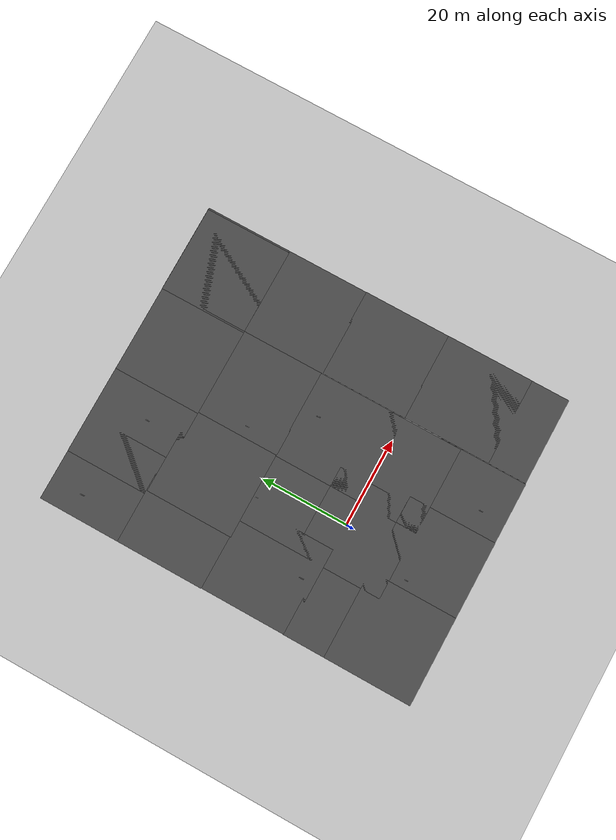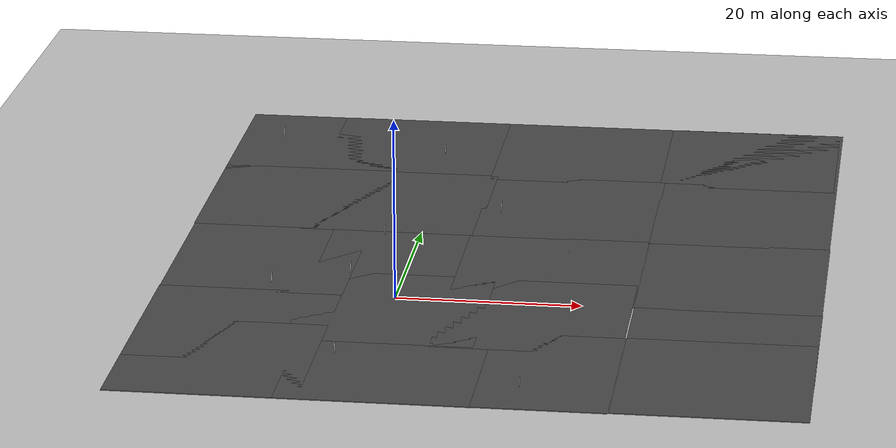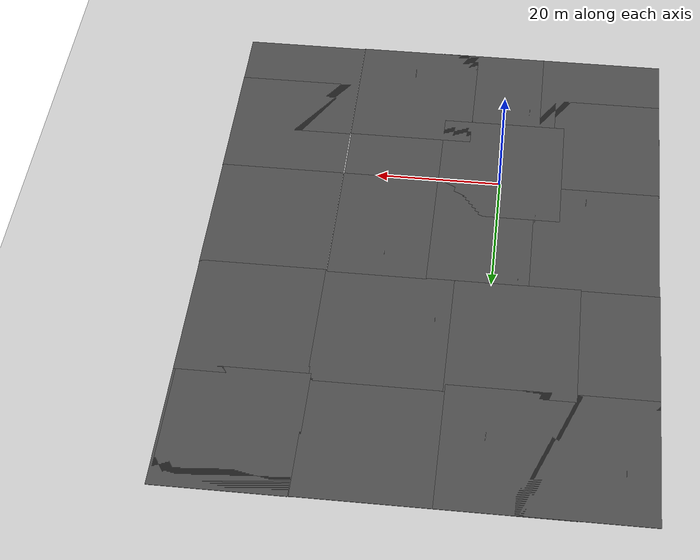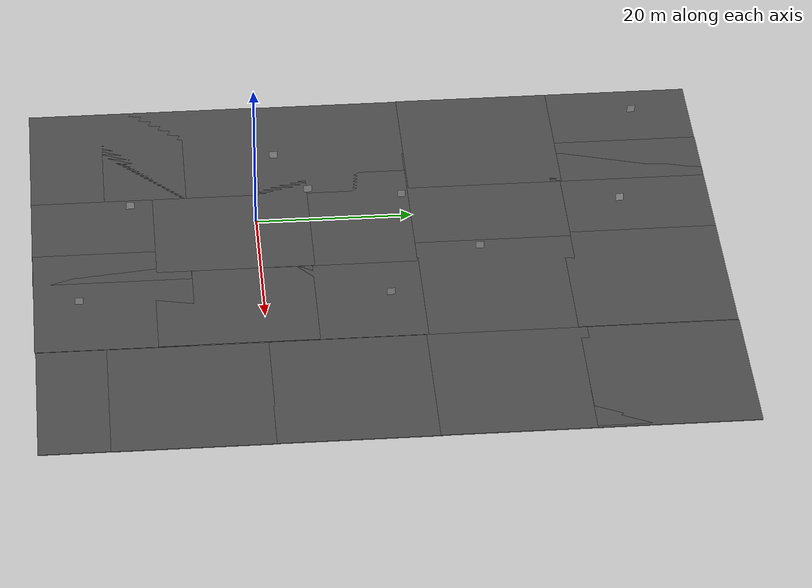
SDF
<sdf version="1.7">
 <world name="default">
  <plugin name="ros_interface_plugin" filename="librotors_gazebo_ros_interface_plugin.so"/>
  <light name="sun" type="directional">
   <pose>0 0 10 0 -0 0</pose>
   <diffuse>0.8 0.8 0.8 1</diffuse>
   <specular>0.2 0.2 0.2 1</specular>
   <attenuation>
    <range>1000</range>
    <constant>0.9</constant>
    <linear>0.01</linear>
    <quadratic>0.001</quadratic>
   </attenuation>
   <direction>-0.5 0.1 -0.9</direction>
   <spot><inner_angle>0</inner_angle><outer_angle>0</outer_angle><falloff>0</falloff></spot>
  </light>
  <model name="ground_plane">
   <static>1</static>
   <link name="link">
    <collision name="collision">
     <geometry><plane><normal>0 0 1</normal><size>100 100</size></plane></geometry>
     <surface><friction><ode><mu>100</mu><mu2>50</mu2></ode></friction></surface>
    </collision>
    <visual name="visual">
     <cast_shadows>0</cast_shadows>
     <geometry><plane><normal>0 0 1</normal><size>100 100</size></plane></geometry>
     <material>
      <script><uri>file://media/materials/scripts/gazebo.material</uri><name>Gazebo/Grey</name></script>
     </material>
    </visual>
    <velocity_decay><linear>0</linear><angular>0</angular></velocity_decay>
   </link>
  </model>
  <physics type="ode">
   <max_step_size>0.001</max_step_size>
   <real_time_factor>1</real_time_factor>
   <real_time_update_rate>1000</real_time_update_rate>
  </physics>
  <scene><ambient>0.4 0.4 0.4 1</ambient><background>0.7 0.7 0.7 1</background><shadows>1</shadows></scene>
  <spherical_coordinates>
   <surface_model>EARTH_WGS84</surface_model>
   <latitude_deg>0</latitude_deg>
   <longitude_deg>0</longitude_deg>
   <elevation>0</elevation>
   <heading_deg>0</heading_deg>
  </spherical_coordinates>
  <model name="asphalt_plane">
   <static>1</static>
   <link name="link">
    <collision name="collision"><geometry><box><size>20 20 0.1</size></box></geometry></collision>
    <visual name="visual">
     <cast_shadows>0</cast_shadows>
     <geometry><box><size>20 20 0.1</size></box></geometry>
     <material>
      <script>
       <uri>model://asphalt_plane/materials/scripts</uri>
       <uri>model://asphalt_plane/materials/textures</uri>
       <name>vrc/asphalt</name>
      </script>
     </material>
    </visual>
    <velocity_decay><linear>0</linear><angular>0</angular></velocity_decay>
   </link>
   <pose>0.030437 -3.13546 0 0 -0 0</pose>
  </model>
  <model name="asphalt_plane_0">
   <static>1</static>
   <link name="link">
    <collision name="collision"><geometry><box><size>20 20 0.1</size></box></geometry></collision>
    <visual name="visual">
     <cast_shadows>0</cast_shadows>
     <geometry><box><size>20 20 0.1</size></box></geometry>
     <material>
      <script>
       <uri>model://asphalt_plane/materials/scripts</uri>
       <uri>model://asphalt_plane/materials/textures</uri>
       <name>vrc/asphalt</name>
      </script>
     </material>
    </visual>
    <velocity_decay><linear>0</linear><angular>0</angular></velocity_decay>
   </link>
   <pose>0.092637 9.86851 0 0 -0 0</pose>
  </model>
  <model name="asphalt_plane_1">
   <static>1</static>
   <link name="link">
    <collision name="collision"><geometry><box><size>20 20 0.1</size></box></geometry></collision>
    <visual name="visual">
     <cast_shadows>0</cast_shadows>
     <geometry><box><size>20 20 0.1</size></box></geometry>
     <material>
      <script>
       <uri>model://asphalt_plane/materials/scripts</uri>
       <uri>model://asphalt_plane/materials/textures</uri>
       <name>vrc/asphalt</name>
      </script>
     </material>
    </visual>
    <velocity_decay><linear>0</linear><angular>0</angular></velocity_decay>
   </link>
   <pose>15.4977 10 0 0 -0 0</pose>
  </model>
  <model name="asphalt_plane_2">
   <static>1</static>
   <link name="link">
    <collision name="collision"><geometry><box><size>20 20 0.1</size></box></geometry></collision>
    <visual name="visual">
     <cast_shadows>0</cast_shadows>
     <geometry><box><size>20 20 0.1</size></box></geometry>
     <material>
      <script>
       <uri>model://asphalt_plane/materials/scripts</uri>
       <uri>model://asphalt_plane/materials/textures</uri>
       <name>vrc/asphalt</name>
      </script>
     </material>
    </visual>
    <velocity_decay><linear>0</linear><angular>0</angular></velocity_decay>
   </link>
   <pose>1.64254 -18.7562 0 0 -0 0</pose>
  </model>
  <model name="asphalt_plane_3">
   <static>1</static>
   <link name="link">
    <collision name="collision"><geometry><box><size>20 20 0.1</size></box></geometry></collision>
    <visual name="visual">
     <cast_shadows>0</cast_shadows>
     <geometry><box><size>20 20 0.1</size></box></geometry>
     <material>
      <script>
       <uri>model://asphalt_plane/materials/scripts</uri>
       <uri>model://asphalt_plane/materials/textures</uri>
       <name>vrc/asphalt</name>
      </script>
     </material>
    </visual>
    <velocity_decay><linear>0</linear><angular>0</angular></velocity_decay>
   </link>
   <pose>15.5136 -18.7124 0 0 -0 0</pose>
  </model>
  <model name="asphalt_plane_4">
   <static>1</static>
   <link name="link">
    <collision name="collision"><geometry><box><size>20 20 0.1</size></box></geometry></collision>
    <visual name="visual">
     <cast_shadows>0</cast_shadows>
     <geometry><box><size>20 20 0.1</size></box></geometry>
     <material>
      <script>
       <uri>model://asphalt_plane/materials/scripts</uri>
       <uri>model://asphalt_plane/materials/textures</uri>
       <name>vrc/asphalt</name>
      </script>
     </material>
    </visual>
    <velocity_decay><linear>0</linear><angular>0</angular></velocity_decay>
   </link>
   <pose>15.4321 -3.44172 0 0 -0 0</pose>
  </model>
  <gravity>0 0 -9.8</gravity>
  <magnetic_field>6e-06 2.3e-05 -4.2e-05</magnetic_field>
  <atmosphere type="adiabatic"/>
  <model name="asphalt_plane_0_clone">
   <static>1</static>
   <link name="link">
    <collision name="collision"><geometry><box><size>20 20 0.1</size></box></geometry></collision>
    <visual name="visual">
     <cast_shadows>0</cast_shadows>
     <geometry><box><size>20 20 0.1</size></box></geometry>
     <material>
      <script>
       <uri>model://asphalt_plane/materials/scripts</uri>
       <uri>model://asphalt_plane/materials/textures</uri>
       <name>vrc/asphalt</name>
      </script>
     </material>
    </visual>
    <velocity_decay><linear>0</linear><angular>0</angular></velocity_decay>
   </link>
   <pose>-15.781 10.0321 0 0 -0 0</pose>
  </model>
  <model name="asphalt_plane_0_clone_clone">
   <static>1</static>
   <link name="link">
    <collision name="collision"><geometry><box><size>20 20 0.1</size></box></geometry></collision>
    <visual name="visual">
     <cast_shadows>0</cast_shadows>
     <geometry><box><size>20 20 0.1</size></box></geometry>
     <material>
      <script>
       <uri>model://asphalt_plane/materials/scripts</uri>
       <uri>model://asphalt_plane/materials/textures</uri>
       <name>vrc/asphalt</name>
      </script>
     </material>
    </visual>
    <velocity_decay><linear>0</linear><angular>0</angular></velocity_decay>
   </link>
   <pose>-15.835 -9.31186 0 0 -0 0</pose>
  </model>
  <model name="asphalt_plane_0_clone_clone_clone">
   <static>1</static>
   <link name="link">
    <collision name="collision"><geometry><box><size>20 20 0.1</size></box></geometry></collision>
    <visual name="visual">
     <cast_shadows>0</cast_shadows>
     <geometry><box><size>20 20 0.1</size></box></geometry>
     <material>
      <script>
       <uri>model://asphalt_plane/materials/scripts</uri>
       <uri>model://asphalt_plane/materials/textures</uri>
       <name>vrc/asphalt</name>
      </script>
     </material>
    </visual>
    <velocity_decay><linear>0</linear><angular>0</angular></velocity_decay>
   </link>
   <pose>-15.841 -18.7551 0 0 -0 0</pose>
  </model>
  <model name="asphalt_plane_1_clone">
   <static>1</static>
   <link name="link">
    <collision name="collision"><geometry><box><size>20 20 0.1</size></box></geometry></collision>
    <visual name="visual">
     <cast_shadows>0</cast_shadows>
     <geometry><box><size>20 20 0.1</size></box></geometry>
     <material>
      <script>
       <uri>model://asphalt_plane/materials/scripts</uri>
       <uri>model://asphalt_plane/materials/textures</uri>
       <name>vrc/asphalt</name>
      </script>
     </material>
    </visual>
    <velocity_decay><linear>0</linear><angular>0</angular></velocity_decay>
   </link>
   <pose>35.5662 9.99458 0 0 -0 0</pose>
  </model>
  <model name="asphalt_plane_4_clone">
   <static>1</static>
   <link name="link">
    <collision name="collision"><geometry><box><size>20 20 0.1</size></box></geometry></collision>
    <visual name="visual">
     <cast_shadows>0</cast_shadows>
     <geometry><box><size>20 20 0.1</size></box></geometry>
     <material>
      <script>
       <uri>model://asphalt_plane/materials/scripts</uri>
       <uri>model://asphalt_plane/materials/textures</uri>
       <name>vrc/asphalt</name>
      </script>
     </material>
    </visual>
    <velocity_decay><linear>0</linear><angular>0</angular></velocity_decay>
   </link>
   <pose>35.602 -9.85933 0 0 -0 0</pose>
  </model>
  <model name="asphalt_plane_3_clone">
   <static>1</static>
   <link name="link">
    <collision name="collision"><geometry><box><size>20 20 0.1</size></box></geometry></collision>
    <visual name="visual">
     <cast_shadows>0</cast_shadows>
     <geometry><box><size>20 20 0.1</size></box></geometry>
     <material>
      <script>
       <uri>model://asphalt_plane/materials/scripts</uri>
       <uri>model://asphalt_plane/materials/textures</uri>
       <name>vrc/asphalt</name>
      </script>
     </material>
    </visual>
    <velocity_decay><linear>0</linear><angular>0</angular></velocity_decay>
   </link>
   <pose>35.5757 -18.5877 0 0 -0 0</pose>
  </model>
  <model name="asphalt_plane_1_clone_clone">
   <static>1</static>
   <link name="link">
    <collision name="collision"><geometry><box><size>20 20 0.1</size></box></geometry></collision>
    <visual name="visual">
     <cast_shadows>0</cast_shadows>
     <geometry><box><size>20 20 0.1</size></box></geometry>
     <material>
      <script>
       <uri>model://asphalt_plane/materials/scripts</uri>
       <uri>model://asphalt_plane/materials/textures</uri>
       <name>vrc/asphalt</name>
      </script>
     </material>
    </visual>
    <velocity_decay><linear>0</linear><angular>0</angular></velocity_decay>
   </link>
   <pose>35.5159 29.6744 0 0 -0 0</pose>
  </model>
  <model name="asphalt_plane_1_clone_clone_clone">
   <static>1</static>
   <link name="link">
    <collision name="collision"><geometry><box><size>20 20 0.1</size></box></geometry></collision>
    <visual name="visual">
     <cast_shadows>0</cast_shadows>
     <geometry><box><size>20 20 0.1</size></box></geometry>
     <material>
      <script>
       <uri>model://asphalt_plane/materials/scripts</uri>
       <uri>model://asphalt_plane/materials/textures</uri>
       <name>vrc/asphalt</name>
      </script>
     </material>
    </visual>
    <velocity_decay><linear>0</linear><angular>0</angular></velocity_decay>
   </link>
   <pose>15.6888 29.7849 0 0 -0 0</pose>
  </model>
  <model name="asphalt_plane_1_clone_clone_clone_clone">
   <static>1</static>
   <link name="link">
    <collision name="collision"><geometry><box><size>20 20 0.1</size></box></geometry></collision>
    <visual name="visual">
     <cast_shadows>0</cast_shadows>
     <geometry><box><size>20 20 0.1</size></box></geometry>
     <material>
      <script>
       <uri>model://asphalt_plane/materials/scripts</uri>
       <uri>model://asphalt_plane/materials/textures</uri>
       <name>vrc/asphalt</name>
      </script>
     </material>
    </visual>
    <velocity_decay><linear>0</linear><angular>0</angular></velocity_decay>
   </link>
   <pose>-3.79661 29.8348 0 0 -0 0</pose>
  </model>
  <model name="asphalt_plane_1_clone_clone_clone_clone_clone">
   <static>1</static>
   <link name="link">
    <collision name="collision"><geometry><box><size>20 20 0.1</size></box></geometry></collision>
    <visual name="visual">
     <cast_shadows>0</cast_shadows>
     <geometry><box><size>20 20 0.1</size></box></geometry>
     <material>
      <script>
       <uri>model://asphalt_plane/materials/scripts</uri>
       <uri>model://asphalt_plane/materials/textures</uri>
       <name>vrc/asphalt</name>
      </script>
     </material>
    </visual>
    <velocity_decay><linear>0</linear><angular>0</angular></velocity_decay>
   </link>
   <pose>-15.8734 30.0233 0 0 -0 0</pose>
  </model>
  <model name="asphalt_plane_1_clone_clone_clone_0">
   <static>1</static>
   <link name="link">
    <collision name="collision"><geometry><box><size>20 20 0.1</size></box></geometry></collision>
    <visual name="visual">
     <cast_shadows>0</cast_shadows>
     <geometry><box><size>20 20 0.1</size></box></geometry>
     <material>
      <script>
       <uri>model://asphalt_plane/materials/scripts</uri>
       <uri>model://asphalt_plane/materials/textures</uri>
       <name>vrc/asphalt</name>
      </script>
     </material>
    </visual>
    <velocity_decay><linear>0</linear><angular>0</angular></velocity_decay>
   </link>
   <pose>35.1617 48.6361 0 0 -0 0</pose>
  </model>
  <model name="asphalt_plane_1_clone_clone_clone_clone_0">
   <static>1</static>
   <link name="link">
    <collision name="collision"><geometry><box><size>20 20 0.1</size></box></geometry></collision>
    <visual name="visual">
     <cast_shadows>0</cast_shadows>
     <geometry><box><size>20 20 0.1</size></box></geometry>
     <material>
      <script>
       <uri>model://asphalt_plane/materials/scripts</uri>
       <uri>model://asphalt_plane/materials/textures</uri>
       <name>vrc/asphalt</name>
      </script>
     </material>
    </visual>
    <velocity_decay><linear>0</linear><angular>0</angular></velocity_decay>
   </link>
   <pose>15.4095 48.6123 0 0 -0 0</pose>
  </model>
  <model name="asphalt_plane_1_clone_clone_clone_clone_clone_0">
   <static>1</static>
   <link name="link">
    <collision name="collision"><geometry><box><size>20 20 0.1</size></box></geometry></collision>
    <visual name="visual">
     <cast_shadows>0</cast_shadows>
     <geometry><box><size>20 20 0.1</size></box></geometry>
     <material>
      <script>
       <uri>model://asphalt_plane/materials/scripts</uri>
       <uri>model://asphalt_plane/materials/textures</uri>
       <name>vrc/asphalt</name>
      </script>
     </material>
    </visual>
    <velocity_decay><linear>0</linear><angular>0</angular></velocity_decay>
   </link>
   <pose>-4.56814 48.6146 0 0 -0 0</pose>
  </model>
  <model name="asphalt_plane_1_clone_clone_clone_clone_clone_clone">
   <static>1</static>
   <link name="link">
    <collision name="collision"><geometry><box><size>20 20 0.1</size></box></geometry></collision>
    <visual name="visual">
     <cast_shadows>0</cast_shadows>
     <geometry><box><size>20 20 0.1</size></box></geometry>
     <material>
      <script>
       <uri>model://asphalt_plane/materials/scripts</uri>
       <uri>model://asphalt_plane/materials/textures</uri>
       <name>vrc/asphalt</name>
      </script>
     </material>
    </visual>
    <velocity_decay><linear>0</linear><angular>0</angular></velocity_decay>
   </link>
   <pose>-15.8753 48.5719 0 0 -0 0</pose>
  </model>
  <model name="Apriltag36_11_00000">
   <link name="main">
    <visual name="main_Visual">
     <geometry><box><size>1 1 0.01</size></box></geometry>
     <material>
      <script>
       <uri>model://Apriltag36_11_00000/materials/scripts</uri>
       <uri>model://Apriltag36_11_00000/materials/textures</uri>
       <name>Apriltag36_11_00000</name>
      </script>
     </material>
    </visual>
   </link>
   <static>1</static>
   <pose>-1 47 0.6 0 1.45955 0</pose>
  </model>
  <model name="Apriltag36_11_00001">
   <link name="main">
    <visual name="main_Visual">
     <geometry><box><size>1 1 0.01</size></box></geometry>
     <material>
      <script>
       <uri>model://Apriltag36_11_00001/materials/scripts</uri>
       <uri>model://Apriltag36_11_00001/materials/textures</uri>
       <name>Apriltag36_11_00001</name>
      </script>
     </material>
    </visual>
   </link>
   <static>1</static>
   <pose>-4 -16 0.6 0 1.52564 0</pose>
  </model>
  <model name="Apriltag36_11_00002">
   <link name="main">
    <visual name="main_Visual">
     <geometry><box><size>1 1 0.01</size></box></geometry>
     <material>
      <script>
       <uri>model://Apriltag36_11_00002/materials/scripts</uri>
       <uri>model://Apriltag36_11_00002/materials/textures</uri>
       <name>Apriltag36_11_00002</name>
      </script>
     </material>
    </visual>
   </link>
   <static>1</static>
   <pose>-6 7 0.6 0.10062 1.56192 0.100461</pose>
  </model>
  <model name="Apriltag36_11_00003">
   <link name="main">
    <visual name="main_Visual">
     <geometry><box><size>1 1 0.01</size></box></geometry>
     <material>
      <script>
       <uri>model://Apriltag36_11_00003/materials/scripts</uri>
       <uri>model://Apriltag36_11_00003/materials/textures</uri>
       <name>Apriltag36_11_00003</name>
      </script>
     </material>
    </visual>
   </link>
   <static>1</static>
   <pose>-14 3 0.6 0 1.53505 0</pose>
  </model>
  <model name="Apriltag36_11_00004">
   <link name="main">
    <visual name="main_Visual">
     <geometry><box><size>1 1 0.01</size></box></geometry>
     <material>
      <script>
       <uri>model://Apriltag36_11_00004/materials/scripts</uri>
       <uri>model://Apriltag36_11_00004/materials/textures</uri>
       <name>Apriltag36_11_00004</name>
      </script>
     </material>
    </visual>
   </link>
   <static>1</static>
   <pose>8 28 0.6 -3.14159 1.56947 -3.14159</pose>
  </model>
  <model name="Apriltag36_11_00005">
   <link name="main">
    <visual name="main_Visual">
     <geometry><box><size>1 1 0.01</size></box></geometry>
     <material>
      <script>
       <uri>model://Apriltag36_11_00005/materials/scripts</uri>
       <uri>model://Apriltag36_11_00005/materials/textures</uri>
       <name>Apriltag36_11_00005</name>
      </script>
     </material>
    </visual>
   </link>
   <static>1</static>
   <pose>16 -23 0.6 0 1.56808 0</pose>
  </model>
  <model name="Apriltag36_11_00006">
   <link name="main">
    <visual name="main_Visual">
     <geometry><box><size>1 1 0.01</size></box></geometry>
     <material>
      <script>
       <uri>model://Apriltag36_11_00006/materials/scripts</uri>
       <uri>model://Apriltag36_11_00006/materials/textures</uri>
       <name>Apriltag36_11_00006</name>
      </script>
     </material>
    </visual>
   </link>
   <static>1</static>
   <pose>-4 19 0.6 -3.14159 1.56722 -3.14159</pose>
  </model>
  <model name="Apriltag36_11_00007">
   <link name="main">
    <visual name="main_Visual">
     <geometry><box><size>1 1 0.01</size></box></geometry>
     <material>
      <script>
       <uri>model://Apriltag36_11_00007/materials/scripts</uri>
       <uri>model://Apriltag36_11_00007/materials/textures</uri>
       <name>Apriltag36_11_00007</name>
      </script>
     </material>
    </visual>
   </link>
   <static>1</static>
   <pose>-21 51 0.6 0 1.56835 0</pose>
  </model>
  <model name="Apriltag36_11_00008">
   <link name="main">
    <visual name="main_Visual">
     <geometry><box><size>1 1 0.01</size></box></geometry>
     <material>
      <script>
       <uri>model://Apriltag36_11_00008/materials/scripts</uri>
       <uri>model://Apriltag36_11_00008/materials/textures</uri>
       <name>Apriltag36_11_00008</name>
      </script>
     </material>
    </visual>
   </link>
   <static>1</static>
   <pose>17 16 0.6 3.04947 1.54033 3.14158</pose>
  </model>
  <model name="asphalt_plane_1_clone_clone_clone_0_clone">
   <static>1</static>
   <link name="link">
    <collision name="collision"><geometry><box><size>20 20 0.1</size></box></geometry></collision>
    <visual name="visual">
     <cast_shadows>0</cast_shadows>
     <geometry><box><size>20 20 0.1</size></box></geometry>
     <material>
      <script>
       <uri>model://asphalt_plane/materials/scripts</uri>
       <uri>model://asphalt_plane/materials/textures</uri>
       <name>vrc/asphalt</name>
      </script>
     </material>
    </visual>
    <velocity_decay><linear>0</linear><angular>0</angular></velocity_decay>
   </link>
   <pose>35.5105 48.6702 0 0 -0 0</pose>
  </model>
 </world>
</sdf>
